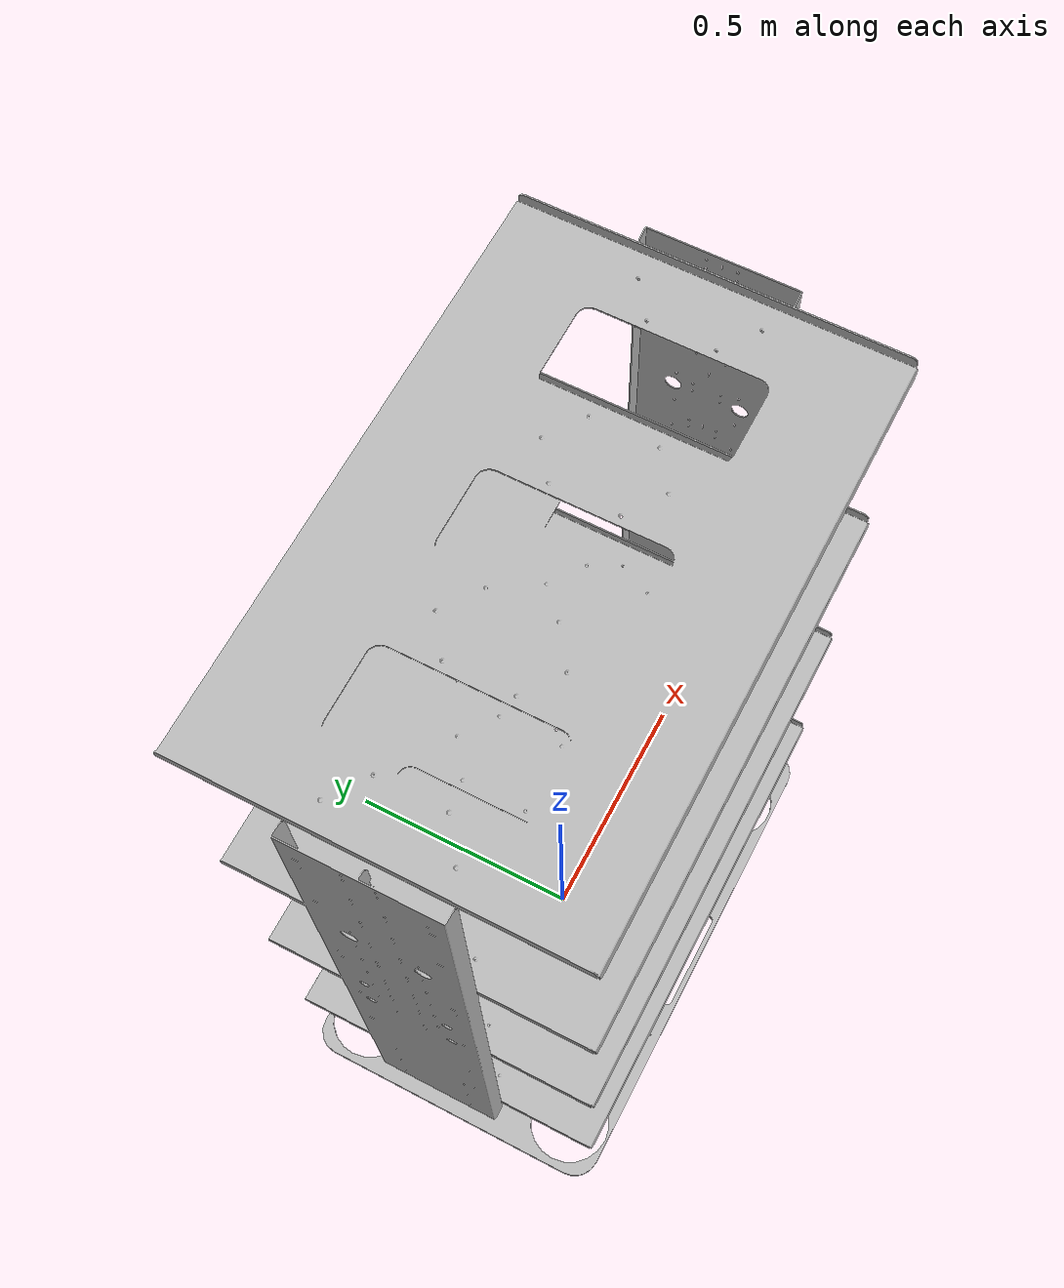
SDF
<sdf version='1.7'>
  <model name='buddi'>
    <link name="base_footprint"/>

    <link name='base_link'>
      <inertial>
        <pose>0.005275 -0.007914 0.592065 0 -0 0</pose>
        <mass>37.6369</mass>
        <inertia>
          <ixx>4.37485</ixx>
          <ixy>0.0111653</ixy>
          <ixz>0.0926495</ixz>
          <iyy>6.29411</iyy>
          <iyz>0.0981576</iyz>
          <izz>4.50749</izz>
        </inertia>
      </inertial>

      <collision name='base_link_collision'>
        <pose>0 0 0.01 0 -0 0</pose>
        <geometry>
          <mesh>
            <scale>1 1 1</scale>
            <uri>/home/susan/buddi_ws/src/buddi_gazebo/meshes/base_link.dae</uri>
          </mesh>
        </geometry>
      </collision>

      <visual name='base_link_visual'>
        <pose>0 0 0.01 0 -0 0</pose>
        <geometry>
          <mesh>
            <scale>1 1 1</scale>
            <uri>/home/susan/buddi_ws/src/buddi_gazebo/meshes/base_link.dae</uri>
          </mesh>
        </geometry>
      </visual>
    </link>

    <joint name="base_joint" type="fixed">
      <parent>base_footprint</parent>
      <child>base_link</child>
      <pose>0.0 0.0 0.010 0 0 0</pose>
    </joint>

  </model>
</sdf>
